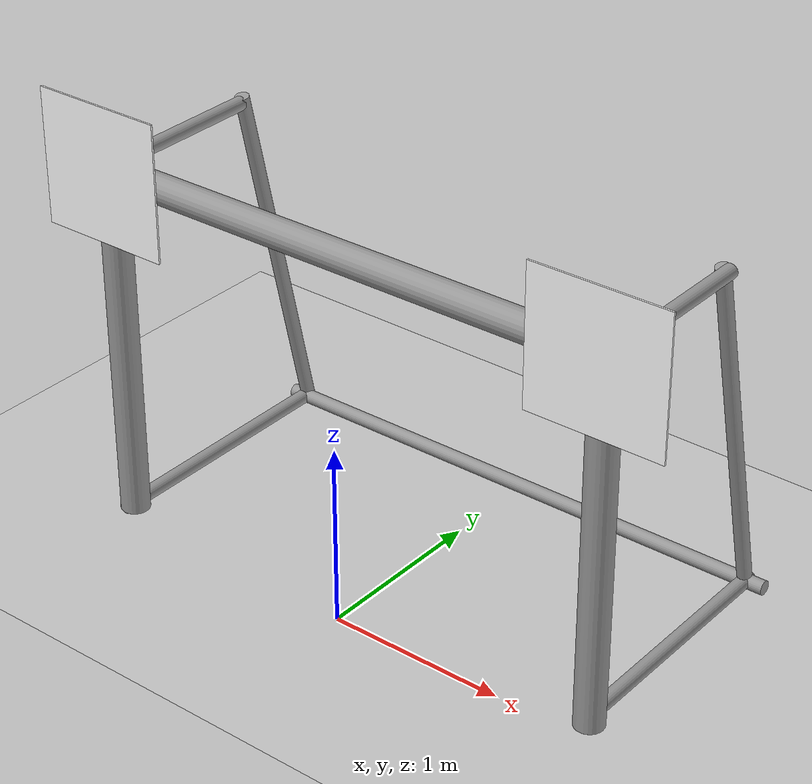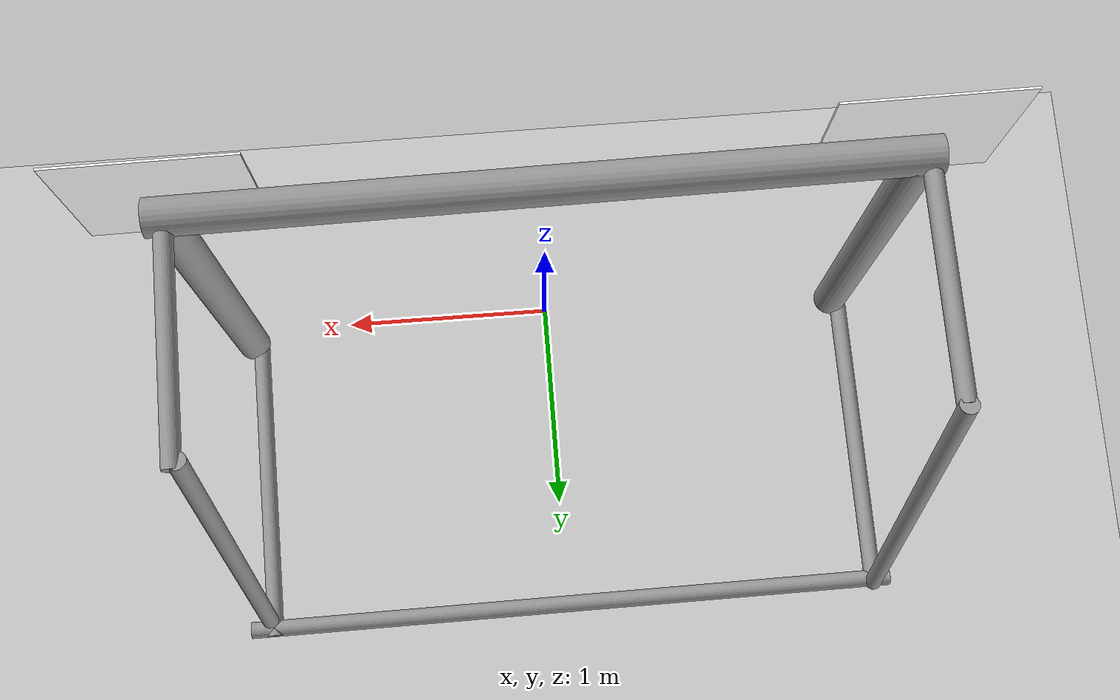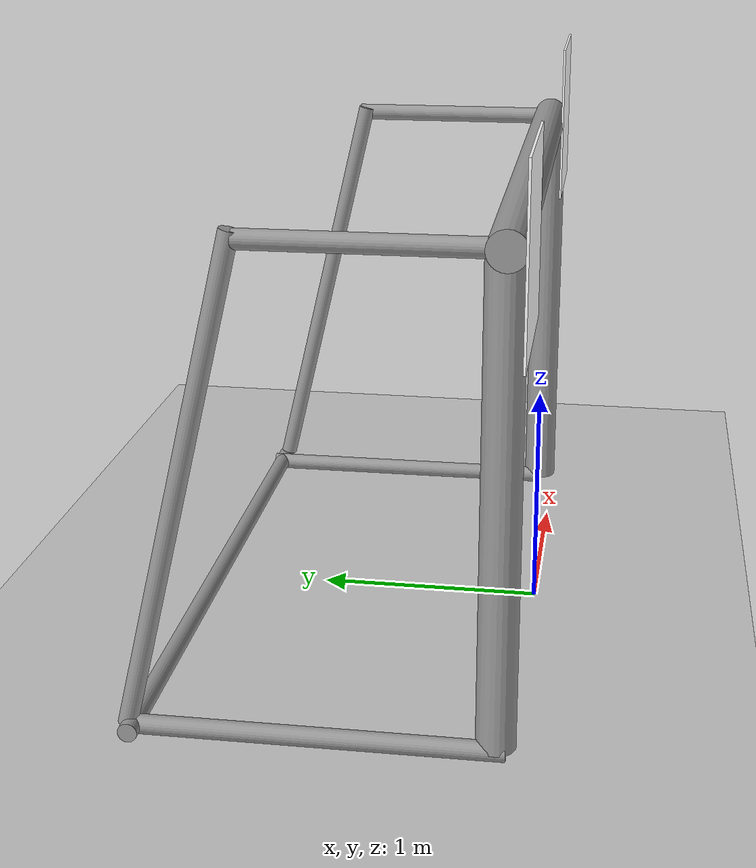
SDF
<sdf version="1.6">
 <world name="default">
  <light name="sun" type="directional">
   <pose>0 0 10 0 -0 0</pose>
   <diffuse>0.8 0.8 0.8 1</diffuse>
   <specular>0.1 0.1 0.1 1</specular>
   <attenuation>
    <range>1000</range>
    <constant>0.9</constant>
    <linear>0.01</linear>
    <quadratic>0.001</quadratic>
   </attenuation>
   <direction>-0.5 0.5 -1</direction>
  </light>
  <model name="ground_plane">
   <static>1</static>
   <link name="link">
    <collision name="collision">
     <geometry><plane><normal>0 0 1</normal><size>100 100</size></plane></geometry>
     <surface><friction><ode><mu>100</mu><mu2>50</mu2></ode></friction></surface>
    </collision>
    <visual name="visual">
     <cast_shadows>0</cast_shadows>
     <geometry><plane><normal>0 0 1</normal><size>100 100</size></plane></geometry>
     <material>
      <script><uri>file://media/materials/scripts/gazebo.material</uri><name>Gazebo/Grey</name></script>
     </material>
    </visual>
   </link>
  </model>
  <gravity>0 0 -9.8</gravity>
  <magnetic_field>6e-06 2.3e-05 -4.2e-05</magnetic_field>
  <atmosphere type="adiabatic"/>
  <physics name="default_physics" default="0" type="ode">
   <max_step_size>0.001</max_step_size>
   <real_time_factor>1</real_time_factor>
   <real_time_update_rate>1000</real_time_update_rate>
  </physics>
  <scene><ambient>0.4 0.4 0.4 1</ambient><background>0.7 0.7 0.7 1</background><shadows>1</shadows></scene>
  <spherical_coordinates>
   <surface_model>EARTH_WGS84</surface_model>
   <latitude_deg>0</latitude_deg>
   <longitude_deg>0</longitude_deg>
   <elevation>0</elevation>
   <heading_deg>0</heading_deg>
  </spherical_coordinates>
  <model name="football_goal_with_mark">
   <link name="link_0">
    <pose>-1.50236 0.235986 -1.71082 0 -0 0</pose>
    <inertial>
     <mass>1</mass>
     <inertia><ixx>0.145833</ixx><ixy>0</ixy><ixz>0</ixz><iyy>0.145833</iyy><iyz>0</iyz><izz>0.125</izz></inertia>
    </inertial>
    <visual name="visual">
     <pose>0 0 2 0 -0 0</pose>
     <geometry><cylinder><radius>0.08</radius><length>2</length></cylinder></geometry>
     <material>
      <lighting>1</lighting>
      <script><uri>file://media/materials/scripts/gazebo.material</uri><name>Gazebo/Grey</name></script>
      <ambient>1 1 1 1</ambient>
      <diffuse>1 1 1 1</diffuse>
      <specular>0.01 0.01 0.01 1</specular>
      <emissive>0 0 0 1</emissive>
      <shader type="vertex"><normal_map>__default__</normal_map></shader>
     </material>
    </visual>
    <collision name="collision">
     <pose>0 0 2 0 -0 0</pose>
     <geometry><cylinder><radius>0.08</radius><length>2</length></cylinder></geometry>
     <surface>
      <friction>
       <ode><mu>1</mu><mu2>1</mu2><fdir1>0 0 0</fdir1><slip1>0</slip1><slip2>0</slip2></ode>
       <torsional>
        <coefficient>1</coefficient>
        <patch_radius>0</patch_radius>
        <surface_radius>0</surface_radius>
        <use_patch_radius>1</use_patch_radius>
        <ode><slip>0</slip></ode>
       </torsional>
      </friction>
      <bounce><restitution_coefficient>0</restitution_coefficient><threshold>1e+06</threshold></bounce>
      <contact>
       <collide_without_contact>0</collide_without_contact>
       <collide_without_contact_bitmask>1</collide_without_contact_bitmask>
       <collide_bitmask>1</collide_bitmask>
       <ode>
        <soft_cfm>0</soft_cfm>
        <soft_erp>0.2</soft_erp>
        <kp>1e+13</kp>
        <kd>1</kd>
        <max_vel>0.01</max_vel>
        <min_depth>0</min_depth>
       </ode>
       <bullet>
        <split_impulse>1</split_impulse>
        <split_impulse_penetration_threshold>-0.01</split_impulse_penetration_threshold>
        <soft_cfm>0</soft_cfm>
        <soft_erp>0.2</soft_erp>
        <kp>1e+13</kp>
        <kd>1</kd>
       </bullet>
      </contact>
     </surface>
    </collision>
   </link>
   <link name="link_0_0">
    <pose>1.45 0.322528 1.3 0 -0 0</pose>
    <inertial>
     <mass>1</mass>
     <inertia>
      <ixx>0.166667</ixx>
      <ixy>0</ixy>
      <ixz>0</ixz>
      <iyy>0.166667</iyy>
      <iyz>0</iyz>
      <izz>0.166667</izz>
     </inertia>
    </inertial>
    <visual name="visual">
     <geometry><box><size>0.75 0.01 0.75</size></box></geometry>
     <material>
      <lighting>1</lighting>
      <script>
       <uri>/home/cm/Workspaces/stereo_loc/src/stereo_loc/texture/marker.material</uri>
       <name>MarkerTexure</name>
      </script>
      <ambient>1 1 1 1</ambient>
      <diffuse>1 1 1 1</diffuse>
      <specular>0.01 0.01 0.01 1</specular>
      <emissive>0 0 0 1</emissive>
      <shader type="vertex"><normal_map>__default__</normal_map></shader>
     </material>
    </visual>
    <collision name="collision">
     <geometry><box><size>0.75 0.01 0.75</size></box></geometry>
     <surface>
      <friction>
       <ode><mu>1</mu><mu2>1</mu2><fdir1>0 0 0</fdir1><slip1>0</slip1><slip2>0</slip2></ode>
       <torsional>
        <coefficient>1</coefficient>
        <patch_radius>0</patch_radius>
        <surface_radius>0</surface_radius>
        <use_patch_radius>1</use_patch_radius>
        <ode><slip>0</slip></ode>
       </torsional>
      </friction>
      <bounce><restitution_coefficient>0</restitution_coefficient><threshold>1e+06</threshold></bounce>
      <contact>
       <collide_without_contact>0</collide_without_contact>
       <collide_without_contact_bitmask>1</collide_without_contact_bitmask>
       <collide_bitmask>1</collide_bitmask>
       <ode>
        <soft_cfm>0</soft_cfm>
        <soft_erp>0.2</soft_erp>
        <kp>1e+13</kp>
        <kd>1</kd>
        <max_vel>0.01</max_vel>
        <min_depth>0</min_depth>
       </ode>
       <bullet>
        <split_impulse>1</split_impulse>
        <split_impulse_penetration_threshold>-0.01</split_impulse_penetration_threshold>
        <soft_cfm>0</soft_cfm>
        <soft_erp>0.2</soft_erp>
        <kp>1e+13</kp>
        <kd>1</kd>
       </bullet>
      </contact>
     </surface>
    </collision>
   </link>
   <link name="link_0_0_clone">
    <pose>-1.5 0.314705 1.3 0 -0 0</pose>
    <inertial>
     <mass>1</mass>
     <inertia>
      <ixx>0.166667</ixx>
      <ixy>0</ixy>
      <ixz>0</ixz>
      <iyy>0.166667</iyy>
      <iyz>0</iyz>
      <izz>0.166667</izz>
     </inertia>
    </inertial>
    <visual name="visual_0">
     <geometry><box><size>0.75 0.01 0.75</size></box></geometry>
     <material>
      <lighting>1</lighting>
      <script>
       <uri>/home/cm/Workspaces/stereo_loc/src/stereo_loc/texture/marker.material</uri>
       <name>MarkerTexure</name>
      </script>
      <ambient>1 1 1 1</ambient>
      <diffuse>1 1 1 1</diffuse>
      <specular>0.01 0.01 0.01 1</specular>
      <emissive>0 0 0 1</emissive>
      <shader type="vertex"><normal_map>__default__</normal_map></shader>
     </material>
    </visual>
    <collision name="collision">
     <geometry><box><size>0.75 0.01 0.75</size></box></geometry>
     <surface>
      <friction>
       <ode><mu>1</mu><mu2>1</mu2><fdir1>0 0 0</fdir1><slip1>0</slip1><slip2>0</slip2></ode>
       <torsional>
        <coefficient>1</coefficient>
        <patch_radius>0</patch_radius>
        <surface_radius>0</surface_radius>
        <use_patch_radius>1</use_patch_radius>
        <ode><slip>0</slip></ode>
       </torsional>
      </friction>
      <bounce><restitution_coefficient>0</restitution_coefficient><threshold>1e+06</threshold></bounce>
      <contact>
       <collide_without_contact>0</collide_without_contact>
       <collide_without_contact_bitmask>1</collide_without_contact_bitmask>
       <collide_bitmask>1</collide_bitmask>
       <ode>
        <soft_cfm>0</soft_cfm>
        <soft_erp>0.2</soft_erp>
        <kp>1e+13</kp>
        <kd>1</kd>
        <max_vel>0.01</max_vel>
        <min_depth>0</min_depth>
       </ode>
       <bullet>
        <split_impulse>1</split_impulse>
        <split_impulse_penetration_threshold>-0.01</split_impulse_penetration_threshold>
        <soft_cfm>0</soft_cfm>
        <soft_erp>0.2</soft_erp>
        <kp>1e+13</kp>
        <kd>1</kd>
       </bullet>
      </contact>
     </surface>
    </collision>
   </link>
   <link name="link_0_clone">
    <pose>1.46069 0.228693 -1.71082 0 -0 0</pose>
    <inertial>
     <mass>1</mass>
     <inertia><ixx>0.145833</ixx><ixy>0</ixy><ixz>0</ixz><iyy>0.145833</iyy><iyz>0</iyz><izz>0.125</izz></inertia>
    </inertial>
    <visual name="visual">
     <pose>0 0 2 0 -0 0</pose>
     <geometry><cylinder><radius>0.08</radius><length>2</length></cylinder></geometry>
     <material>
      <lighting>1</lighting>
      <script><uri>file://media/materials/scripts/gazebo.material</uri><name>Gazebo/Grey</name></script>
      <ambient>1 1 1 1</ambient>
      <diffuse>1 1 1 1</diffuse>
      <specular>0.01 0.01 0.01 1</specular>
      <emissive>0 0 0 1</emissive>
      <shader type="vertex"><normal_map>__default__</normal_map></shader>
     </material>
    </visual>
    <collision name="collision">
     <pose>0 0 2 0 -0 0</pose>
     <geometry><cylinder><radius>0.08</radius><length>2</length></cylinder></geometry>
     <surface>
      <friction>
       <ode><mu>1</mu><mu2>1</mu2><fdir1>0 0 0</fdir1><slip1>0</slip1><slip2>0</slip2></ode>
       <torsional>
        <coefficient>1</coefficient>
        <patch_radius>0</patch_radius>
        <surface_radius>0</surface_radius>
        <use_patch_radius>1</use_patch_radius>
        <ode><slip>0</slip></ode>
       </torsional>
      </friction>
      <bounce><restitution_coefficient>0</restitution_coefficient><threshold>1e+06</threshold></bounce>
      <contact>
       <collide_without_contact>0</collide_without_contact>
       <collide_without_contact_bitmask>1</collide_without_contact_bitmask>
       <collide_bitmask>1</collide_bitmask>
       <ode>
        <soft_cfm>0</soft_cfm>
        <soft_erp>0.2</soft_erp>
        <kp>1e+13</kp>
        <kd>1</kd>
        <max_vel>0.01</max_vel>
        <min_depth>0</min_depth>
       </ode>
       <bullet>
        <split_impulse>1</split_impulse>
        <split_impulse_penetration_threshold>-0.01</split_impulse_penetration_threshold>
        <soft_cfm>0</soft_cfm>
        <soft_erp>0.2</soft_erp>
        <kp>1e+13</kp>
        <kd>1</kd>
       </bullet>
      </contact>
     </surface>
    </collision>
   </link>
   <link name="link_0_clone_clone">
    <pose>1.49764 -1.45216 -1.64111 -0.225171 -0 -0</pose>
    <inertial>
     <mass>0.94758</mass>
     <inertia>
      <ixx>0.130127</ixx>
      <ixy>0</ixy>
      <ixz>0</ixz>
      <iyy>0.130127</iyy>
      <iyz>0</iyz>
      <izz>0.118448</izz>
     </inertia>
    </inertial>
    <visual name="visual">
     <pose>0 0 2 0 -0 0</pose>
     <geometry><cylinder><radius>0.04</radius><length>2.08468</length></cylinder></geometry>
     <material>
      <lighting>1</lighting>
      <script><uri>file://media/materials/scripts/gazebo.material</uri><name>Gazebo/Grey</name></script>
      <ambient>1 1 1 1</ambient>
      <diffuse>1 1 1 1</diffuse>
      <specular>0.01 0.01 0.01 1</specular>
      <emissive>0 0 0 1</emissive>
      <shader type="vertex"><normal_map>__default__</normal_map></shader>
     </material>
    </visual>
    <collision name="collision">
     <pose>0 0 2 0 -0 0</pose>
     <geometry><cylinder><radius>0.04</radius><length>2.08468</length></cylinder></geometry>
     <surface>
      <friction>
       <ode><mu>1</mu><mu2>1</mu2><fdir1>0 0 0</fdir1><slip1>0</slip1><slip2>0</slip2></ode>
       <torsional>
        <coefficient>1</coefficient>
        <patch_radius>0</patch_radius>
        <surface_radius>0</surface_radius>
        <use_patch_radius>1</use_patch_radius>
        <ode><slip>0</slip></ode>
       </torsional>
      </friction>
      <bounce><restitution_coefficient>0</restitution_coefficient><threshold>1e+06</threshold></bounce>
      <contact>
       <collide_without_contact>0</collide_without_contact>
       <collide_without_contact_bitmask>1</collide_without_contact_bitmask>
       <collide_bitmask>1</collide_bitmask>
       <ode>
        <soft_cfm>0</soft_cfm>
        <soft_erp>0.2</soft_erp>
        <kp>1e+13</kp>
        <kd>1</kd>
        <max_vel>0.01</max_vel>
        <min_depth>0</min_depth>
       </ode>
       <bullet>
        <split_impulse>1</split_impulse>
        <split_impulse_penetration_threshold>-0.01</split_impulse_penetration_threshold>
        <soft_cfm>0</soft_cfm>
        <soft_erp>0.2</soft_erp>
        <kp>1e+13</kp>
        <kd>1</kd>
       </bullet>
      </contact>
     </surface>
    </collision>
   </link>
   <link name="link_0_clone_clone_clone">
    <pose>-1.47855 -1.40446 -1.61642 -0.225171 -0 -0</pose>
    <inertial>
     <mass>0.915875</mass>
     <inertia>
      <ixx>0.121264</ixx>
      <ixy>0</ixy>
      <ixz>0</ixz>
      <iyy>0.121264</iyy>
      <iyz>0</iyz>
      <izz>0.114484</izz>
     </inertia>
    </inertial>
    <visual name="visual">
     <pose>0 0 2 0 -0 0</pose>
     <geometry><cylinder><radius>0.04</radius><length>2.01493</length></cylinder></geometry>
     <material>
      <lighting>1</lighting>
      <script><uri>file://media/materials/scripts/gazebo.material</uri><name>Gazebo/Grey</name></script>
      <ambient>1 1 1 1</ambient>
      <diffuse>1 1 1 1</diffuse>
      <specular>0.01 0.01 0.01 1</specular>
      <emissive>0 0 0 1</emissive>
      <shader type="vertex"><normal_map>__default__</normal_map></shader>
     </material>
    </visual>
    <collision name="collision">
     <pose>0 0 2 0 -0 0</pose>
     <geometry><cylinder><radius>0.04</radius><length>2.01493</length></cylinder></geometry>
     <surface>
      <friction>
       <ode><mu>1</mu><mu2>1</mu2><fdir1>0 0 0</fdir1><slip1>0</slip1><slip2>0</slip2></ode>
       <torsional>
        <coefficient>1</coefficient>
        <patch_radius>0</patch_radius>
        <surface_radius>0</surface_radius>
        <use_patch_radius>1</use_patch_radius>
        <ode><slip>0</slip></ode>
       </torsional>
      </friction>
      <bounce><restitution_coefficient>0</restitution_coefficient><threshold>1e+06</threshold></bounce>
      <contact>
       <collide_without_contact>0</collide_without_contact>
       <collide_without_contact_bitmask>1</collide_without_contact_bitmask>
       <collide_bitmask>1</collide_bitmask>
       <ode>
        <soft_cfm>0</soft_cfm>
        <soft_erp>0.2</soft_erp>
        <kp>1e+13</kp>
        <kd>1</kd>
        <max_vel>0.01</max_vel>
        <min_depth>0</min_depth>
       </ode>
       <bullet>
        <split_impulse>1</split_impulse>
        <split_impulse_penetration_threshold>-0.01</split_impulse_penetration_threshold>
        <soft_cfm>0</soft_cfm>
        <soft_erp>0.2</soft_erp>
        <kp>1e+13</kp>
        <kd>1</kd>
       </bullet>
      </contact>
     </surface>
    </collision>
   </link>
   <link name="link_1">
    <pose>-0.014228 0.235986 1.28918 0.004162 1.57079 0.004162</pose>
    <inertial>
     <mass>1</mass>
     <inertia><ixx>0.145833</ixx><ixy>0</ixy><ixz>0</ixz><iyy>0.145833</iyy><iyz>0</iyz><izz>0.125</izz></inertia>
    </inertial>
    <visual name="visual">
     <geometry><cylinder><radius>0.08</radius><length>3.12</length></cylinder></geometry>
     <material>
      <lighting>1</lighting>
      <script><uri>file://media/materials/scripts/gazebo.material</uri><name>Gazebo/Grey</name></script>
      <ambient>1 1 1 1</ambient>
      <diffuse>1 1 1 1</diffuse>
      <specular>0.01 0.01 0.01 1</specular>
      <emissive>0 0 0 1</emissive>
      <shader type="vertex"><normal_map>__default__</normal_map></shader>
     </material>
    </visual>
    <collision name="collision">
     <geometry><cylinder><radius>0.08</radius><length>3.12</length></cylinder></geometry>
     <surface>
      <friction>
       <ode><mu>1</mu><mu2>1</mu2><fdir1>0 0 0</fdir1><slip1>0</slip1><slip2>0</slip2></ode>
       <torsional>
        <coefficient>1</coefficient>
        <patch_radius>0</patch_radius>
        <surface_radius>0</surface_radius>
        <use_patch_radius>1</use_patch_radius>
        <ode><slip>0</slip></ode>
       </torsional>
      </friction>
      <bounce><restitution_coefficient>0</restitution_coefficient><threshold>1e+06</threshold></bounce>
      <contact>
       <collide_without_contact>0</collide_without_contact>
       <collide_without_contact_bitmask>1</collide_without_contact_bitmask>
       <collide_bitmask>1</collide_bitmask>
       <ode>
        <soft_cfm>0</soft_cfm>
        <soft_erp>0.2</soft_erp>
        <kp>1e+13</kp>
        <kd>1</kd>
        <max_vel>0.01</max_vel>
        <min_depth>0</min_depth>
       </ode>
       <bullet>
        <split_impulse>1</split_impulse>
        <split_impulse_penetration_threshold>-0.01</split_impulse_penetration_threshold>
        <soft_cfm>0</soft_cfm>
        <soft_erp>0.2</soft_erp>
        <kp>1e+13</kp>
        <kd>1</kd>
       </bullet>
      </contact>
     </surface>
    </collision>
   </link>
   <link name="link_1_clone">
    <pose>-1.46642 -0.505604 -0.710818 1.59228 1.57079 0.02149</pose>
    <inertial>
     <mass>1</mass>
     <inertia><ixx>0.145833</ixx><ixy>0</ixy><ixz>0</ixz><iyy>0.145833</iyy><iyz>0</iyz><izz>0.125</izz></inertia>
    </inertial>
    <visual name="visual">
     <geometry><cylinder><radius>0.04</radius><length>1.5</length></cylinder></geometry>
     <material>
      <lighting>1</lighting>
      <script><uri>file://media/materials/scripts/gazebo.material</uri><name>Gazebo/Grey</name></script>
      <ambient>1 1 1 1</ambient>
      <diffuse>1 1 1 1</diffuse>
      <specular>0.01 0.01 0.01 1</specular>
      <emissive>0 0 0 1</emissive>
      <shader type="vertex"><normal_map>__default__</normal_map></shader>
     </material>
    </visual>
    <collision name="collision">
     <geometry><cylinder><radius>0.04</radius><length>1.5</length></cylinder></geometry>
     <surface>
      <friction>
       <ode><mu>1</mu><mu2>1</mu2><fdir1>0 0 0</fdir1><slip1>0</slip1><slip2>0</slip2></ode>
       <torsional>
        <coefficient>1</coefficient>
        <patch_radius>0</patch_radius>
        <surface_radius>0</surface_radius>
        <use_patch_radius>1</use_patch_radius>
        <ode><slip>0</slip></ode>
       </torsional>
      </friction>
      <bounce><restitution_coefficient>0</restitution_coefficient><threshold>1e+06</threshold></bounce>
      <contact>
       <collide_without_contact>0</collide_without_contact>
       <collide_without_contact_bitmask>1</collide_without_contact_bitmask>
       <collide_bitmask>1</collide_bitmask>
       <ode>
        <soft_cfm>0</soft_cfm>
        <soft_erp>0.2</soft_erp>
        <kp>1e+13</kp>
        <kd>1</kd>
        <max_vel>0.01</max_vel>
        <min_depth>0</min_depth>
       </ode>
       <bullet>
        <split_impulse>1</split_impulse>
        <split_impulse_penetration_threshold>-0.01</split_impulse_penetration_threshold>
        <soft_cfm>0</soft_cfm>
        <soft_erp>0.2</soft_erp>
        <kp>1e+13</kp>
        <kd>1</kd>
       </bullet>
      </contact>
     </surface>
    </collision>
   </link>
   <link name="link_1_clone_0">
    <pose>-0.001601 -1.21893 -0.71082 0.000827 1.57079 0.000827</pose>
    <inertial>
     <mass>1</mass>
     <inertia><ixx>0.145833</ixx><ixy>0</ixy><ixz>0</ixz><iyy>0.145833</iyy><iyz>0</iyz><izz>0.125</izz></inertia>
    </inertial>
    <visual name="visual">
     <geometry><cylinder><radius>0.04</radius><length>3.16</length></cylinder></geometry>
     <material>
      <lighting>1</lighting>
      <script><uri>file://media/materials/scripts/gazebo.material</uri><name>Gazebo/Grey</name></script>
      <ambient>1 1 1 1</ambient>
      <diffuse>1 1 1 1</diffuse>
      <specular>0.01 0.01 0.01 1</specular>
      <emissive>0 0 0 1</emissive>
      <shader type="vertex"><normal_map>__default__</normal_map></shader>
     </material>
    </visual>
    <collision name="collision">
     <geometry><cylinder><radius>0.04</radius><length>3.16</length></cylinder></geometry>
     <surface>
      <friction>
       <ode><mu>1</mu><mu2>1</mu2><fdir1>0 0 0</fdir1><slip1>0</slip1><slip2>0</slip2></ode>
       <torsional>
        <coefficient>1</coefficient>
        <patch_radius>0</patch_radius>
        <surface_radius>0</surface_radius>
        <use_patch_radius>1</use_patch_radius>
        <ode><slip>0</slip></ode>
       </torsional>
      </friction>
      <bounce><restitution_coefficient>0</restitution_coefficient><threshold>1e+06</threshold></bounce>
      <contact>
       <collide_without_contact>0</collide_without_contact>
       <collide_without_contact_bitmask>1</collide_without_contact_bitmask>
       <collide_bitmask>1</collide_bitmask>
       <ode>
        <soft_cfm>0</soft_cfm>
        <soft_erp>0.2</soft_erp>
        <kp>1e+13</kp>
        <kd>1</kd>
        <max_vel>0.01</max_vel>
        <min_depth>0</min_depth>
       </ode>
       <bullet>
        <split_impulse>1</split_impulse>
        <split_impulse_penetration_threshold>-0.01</split_impulse_penetration_threshold>
        <soft_cfm>0</soft_cfm>
        <soft_erp>0.2</soft_erp>
        <kp>1e+13</kp>
        <kd>1</kd>
       </bullet>
      </contact>
     </surface>
    </collision>
   </link>
   <link name="link_1_clone_clone">
    <pose>1.49763 -0.479431 -0.710818 1.57357 1.57079 0.002776</pose>
    <inertial>
     <mass>1</mass>
     <inertia><ixx>0.145833</ixx><ixy>0</ixy><ixz>0</ixz><iyy>0.145833</iyy><iyz>0</iyz><izz>0.125</izz></inertia>
    </inertial>
    <visual name="visual">
     <geometry><cylinder><radius>0.04</radius><length>1.5</length></cylinder></geometry>
     <material>
      <lighting>1</lighting>
      <script><uri>file://media/materials/scripts/gazebo.material</uri><name>Gazebo/Grey</name></script>
      <ambient>1 1 1 1</ambient>
      <diffuse>1 1 1 1</diffuse>
      <specular>0.01 0.01 0.01 1</specular>
      <emissive>0 0 0 1</emissive>
      <shader type="vertex"><normal_map>__default__</normal_map></shader>
     </material>
    </visual>
    <collision name="collision">
     <geometry><cylinder><radius>0.04</radius><length>1.5</length></cylinder></geometry>
     <surface>
      <friction>
       <ode><mu>1</mu><mu2>1</mu2><fdir1>0 0 0</fdir1><slip1>0</slip1><slip2>0</slip2></ode>
       <torsional>
        <coefficient>1</coefficient>
        <patch_radius>0</patch_radius>
        <surface_radius>0</surface_radius>
        <use_patch_radius>1</use_patch_radius>
        <ode><slip>0</slip></ode>
       </torsional>
      </friction>
      <bounce><restitution_coefficient>0</restitution_coefficient><threshold>1e+06</threshold></bounce>
      <contact>
       <collide_without_contact>0</collide_without_contact>
       <collide_without_contact_bitmask>1</collide_without_contact_bitmask>
       <collide_bitmask>1</collide_bitmask>
       <ode>
        <soft_cfm>0</soft_cfm>
        <soft_erp>0.2</soft_erp>
        <kp>1e+13</kp>
        <kd>1</kd>
        <max_vel>0.01</max_vel>
        <min_depth>0</min_depth>
       </ode>
       <bullet>
        <split_impulse>1</split_impulse>
        <split_impulse_penetration_threshold>-0.01</split_impulse_penetration_threshold>
        <soft_cfm>0</soft_cfm>
        <soft_erp>0.2</soft_erp>
        <kp>1e+13</kp>
        <kd>1</kd>
       </bullet>
      </contact>
     </surface>
    </collision>
   </link>
   <link name="link_1_clone_clone_clone">
    <pose>-1.50236 -0.264014 1.28918 1.57357 1.57079 0.002788</pose>
    <inertial>
     <mass>1</mass>
     <inertia><ixx>0.145833</ixx><ixy>0</ixy><ixz>0</ixz><iyy>0.145833</iyy><iyz>0</iyz><izz>0.125</izz></inertia>
    </inertial>
    <visual name="visual">
     <geometry><cylinder><radius>0.04</radius><length>1</length></cylinder></geometry>
     <material>
      <lighting>1</lighting>
      <script><uri>file://media/materials/scripts/gazebo.material</uri><name>Gazebo/Grey</name></script>
      <ambient>1 1 1 1</ambient>
      <diffuse>1 1 1 1</diffuse>
      <specular>0.01 0.01 0.01 1</specular>
      <emissive>0 0 0 1</emissive>
      <shader type="vertex"><normal_map>__default__</normal_map></shader>
     </material>
    </visual>
    <collision name="collision">
     <geometry><cylinder><radius>0.04</radius><length>1</length></cylinder></geometry>
     <surface>
      <friction>
       <ode><mu>1</mu><mu2>1</mu2><fdir1>0 0 0</fdir1><slip1>0</slip1><slip2>0</slip2></ode>
       <torsional>
        <coefficient>1</coefficient>
        <patch_radius>0</patch_radius>
        <surface_radius>0</surface_radius>
        <use_patch_radius>1</use_patch_radius>
        <ode><slip>0</slip></ode>
       </torsional>
      </friction>
      <bounce><restitution_coefficient>0</restitution_coefficient><threshold>1e+06</threshold></bounce>
      <contact>
       <collide_without_contact>0</collide_without_contact>
       <collide_without_contact_bitmask>1</collide_without_contact_bitmask>
       <collide_bitmask>1</collide_bitmask>
       <ode>
        <soft_cfm>0</soft_cfm>
        <soft_erp>0.2</soft_erp>
        <kp>1e+13</kp>
        <kd>1</kd>
        <max_vel>0.01</max_vel>
        <min_depth>0</min_depth>
       </ode>
       <bullet>
        <split_impulse>1</split_impulse>
        <split_impulse_penetration_threshold>-0.01</split_impulse_penetration_threshold>
        <soft_cfm>0</soft_cfm>
        <soft_erp>0.2</soft_erp>
        <kp>1e+13</kp>
        <kd>1</kd>
       </bullet>
      </contact>
     </surface>
    </collision>
   </link>
   <link name="link_1_clone_clone_clone_0">
    <pose>1.49764 -0.264014 1.28918 1.57357 1.57079 0.002777</pose>
    <inertial>
     <mass>1</mass>
     <inertia><ixx>0.145833</ixx><ixy>0</ixy><ixz>0</ixz><iyy>0.145833</iyy><iyz>0</iyz><izz>0.125</izz></inertia>
    </inertial>
    <visual name="visual">
     <geometry><cylinder><radius>0.04</radius><length>1</length></cylinder></geometry>
     <material>
      <lighting>1</lighting>
      <script><uri>file://media/materials/scripts/gazebo.material</uri><name>Gazebo/Grey</name></script>
      <ambient>1 1 1 1</ambient>
      <diffuse>1 1 1 1</diffuse>
      <specular>0.01 0.01 0.01 1</specular>
      <emissive>0 0 0 1</emissive>
      <shader type="vertex"><normal_map>__default__</normal_map></shader>
     </material>
    </visual>
    <collision name="collision">
     <geometry><cylinder><radius>0.04</radius><length>1</length></cylinder></geometry>
     <surface>
      <friction>
       <ode><mu>1</mu><mu2>1</mu2><fdir1>0 0 0</fdir1><slip1>0</slip1><slip2>0</slip2></ode>
       <torsional>
        <coefficient>1</coefficient>
        <patch_radius>0</patch_radius>
        <surface_radius>0</surface_radius>
        <use_patch_radius>1</use_patch_radius>
        <ode><slip>0</slip></ode>
       </torsional>
      </friction>
      <bounce><restitution_coefficient>0</restitution_coefficient><threshold>1e+06</threshold></bounce>
      <contact>
       <collide_without_contact>0</collide_without_contact>
       <collide_without_contact_bitmask>1</collide_without_contact_bitmask>
       <collide_bitmask>1</collide_bitmask>
       <ode>
        <soft_cfm>0</soft_cfm>
        <soft_erp>0.2</soft_erp>
        <kp>1e+13</kp>
        <kd>1</kd>
        <max_vel>0.01</max_vel>
        <min_depth>0</min_depth>
       </ode>
       <bullet>
        <split_impulse>1</split_impulse>
        <split_impulse_penetration_threshold>-0.01</split_impulse_penetration_threshold>
        <soft_cfm>0</soft_cfm>
        <soft_erp>0.2</soft_erp>
        <kp>1e+13</kp>
        <kd>1</kd>
       </bullet>
      </contact>
     </surface>
    </collision>
   </link>
   <joint name="link_0_0_JOINT_1" type="fixed">
    <parent>link_0_0</parent>
    <child>link_0_clone</child>
    <physics>
     <ode><limit><cfm>0</cfm><erp>0.2</erp></limit><suspension><cfm>0</cfm><erp>0.2</erp></suspension></ode>
    </physics>
   </joint>
   <joint name="link_0_0_clone_JOINT_1" type="revolute">
    <parent>link_0_0_clone</parent>
    <child>link_0</child>
    <axis>
     <xyz>1 0 0</xyz>
     <use_parent_model_frame>0</use_parent_model_frame>
     <limit>
      <lower>-1.79769e+308</lower>
      <upper>1.79769e+308</upper>
      <effort>-1</effort>
      <velocity>-1</velocity>
     </limit>
     <dynamics>
      <spring_reference>0</spring_reference>
      <spring_stiffness>0</spring_stiffness>
      <damping>0</damping>
      <friction>0</friction>
     </dynamics>
    </axis>
    <physics>
     <ode><limit><cfm>0</cfm><erp>0.2</erp></limit><suspension><cfm>0</cfm><erp>0.2</erp></suspension></ode>
    </physics>
   </joint>
   <joint name="link_0_clone_JOINT_4" type="fixed">
    <parent>link_0_clone</parent>
    <child>link_1_clone_clone</child>
    <physics>
     <ode><limit><cfm>0</cfm><erp>0.2</erp></limit><suspension><cfm>0</cfm><erp>0.2</erp></suspension></ode>
    </physics>
   </joint>
   <joint name="link_0_clone_clone_JOINT_11" type="fixed">
    <parent>link_0_clone_clone</parent>
    <child>link_1_clone_0</child>
    <physics>
     <ode><limit><cfm>0</cfm><erp>0.2</erp></limit><suspension><cfm>0</cfm><erp>0.2</erp></suspension></ode>
    </physics>
   </joint>
   <joint name="link_0_clone_clone_JOINT_12" type="fixed">
    <parent>link_0_clone_clone</parent>
    <child>link_1_clone_clone</child>
    <physics>
     <ode><limit><cfm>0</cfm><erp>0.2</erp></limit><suspension><cfm>0</cfm><erp>0.2</erp></suspension></ode>
    </physics>
   </joint>
   <joint name="link_0_clone_clone_clone_JOINT_8" type="fixed">
    <parent>link_0_clone_clone_clone</parent>
    <child>link_1_clone</child>
    <physics>
     <ode><limit><cfm>0</cfm><erp>0.2</erp></limit><suspension><cfm>0</cfm><erp>0.2</erp></suspension></ode>
    </physics>
   </joint>
   <joint name="link_0_clone_clone_clone_JOINT_9" type="fixed">
    <parent>link_0_clone_clone_clone</parent>
    <child>link_1_clone_0</child>
    <physics>
     <ode><limit><cfm>0</cfm><erp>0.2</erp></limit><suspension><cfm>0</cfm><erp>0.2</erp></suspension></ode>
    </physics>
   </joint>
   <joint name="link_1_JOINT_0_0" type="fixed">
    <parent>link_1</parent>
    <child>link_0_0_clone</child>
    <physics>
     <ode><limit><cfm>0</cfm><erp>0.2</erp></limit><suspension><cfm>0</cfm><erp>0.2</erp></suspension></ode>
    </physics>
   </joint>
   <joint name="link_1_JOINT_0" type="fixed">
    <parent>link_1</parent>
    <child>link_0_0</child>
    <physics>
     <ode><limit><cfm>0</cfm><erp>0.2</erp></limit><suspension><cfm>0</cfm><erp>0.2</erp></suspension></ode>
    </physics>
   </joint>
   <joint name="link_1_JOINT_1" type="fixed">
    <parent>link_1</parent>
    <child>link_1_clone_clone_clone_0</child>
    <physics>
     <ode><limit><cfm>0</cfm><erp>0.2</erp></limit><suspension><cfm>0</cfm><erp>0.2</erp></suspension></ode>
    </physics>
   </joint>
   <joint name="link_1_clone_JOINT_5" type="fixed">
    <parent>link_1_clone</parent>
    <child>link_1_clone_0</child>
    <physics>
     <ode><limit><cfm>0</cfm><erp>0.2</erp></limit><suspension><cfm>0</cfm><erp>0.2</erp></suspension></ode>
    </physics>
   </joint>
   <joint name="link_1_clone_clone_JOINT_6" type="fixed">
    <parent>link_1_clone_clone</parent>
    <child>link_1_clone_0</child>
    <physics>
     <ode><limit><cfm>0</cfm><erp>0.2</erp></limit><suspension><cfm>0</cfm><erp>0.2</erp></suspension></ode>
    </physics>
   </joint>
   <joint name="link_1_clone_clone_clone_0_JOINT_10" type="fixed">
    <parent>link_1_clone_clone_clone_0</parent>
    <child>link_0_clone_clone</child>
    <physics>
     <ode><limit><cfm>0</cfm><erp>0.2</erp></limit><suspension><cfm>0</cfm><erp>0.2</erp></suspension></ode>
    </physics>
   </joint>
   <joint name="link_1_clone_clone_clone_0_JOINT_3" type="fixed">
    <parent>link_1_clone_clone_clone_0</parent>
    <child>link_0_clone</child>
    <physics>
     <ode><limit><cfm>0</cfm><erp>0.2</erp></limit><suspension><cfm>0</cfm><erp>0.2</erp></suspension></ode>
    </physics>
   </joint>
   <joint name="link_1_clone_clone_clone_JOINT_0_0" type="fixed">
    <parent>link_1_clone_clone_clone</parent>
    <child>link_0</child>
    <physics>
     <ode><limit><cfm>0</cfm><erp>0.2</erp></limit><suspension><cfm>0</cfm><erp>0.2</erp></suspension></ode>
    </physics>
   </joint>
   <joint name="link_1_clone_clone_clone_JOINT_0" type="fixed">
    <parent>link_1_clone_clone_clone</parent>
    <child>link_1</child>
    <physics>
     <ode><limit><cfm>0</cfm><erp>0.2</erp></limit><suspension><cfm>0</cfm><erp>0.2</erp></suspension></ode>
    </physics>
   </joint>
   <joint name="link_1_clone_clone_clone_JOINT_7" type="fixed">
    <parent>link_1_clone_clone_clone</parent>
    <child>link_0_clone_clone_clone</child>
    <physics>
     <ode><limit><cfm>0</cfm><erp>0.2</erp></limit><suspension><cfm>0</cfm><erp>0.2</erp></suspension></ode>
    </physics>
   </joint>
   <static>0</static>
   <pose>-0.009143 0.295619 0.750798 -1.6e-05 -6e-06 -3.13382</pose>
  </model>
 </world>
</sdf>
